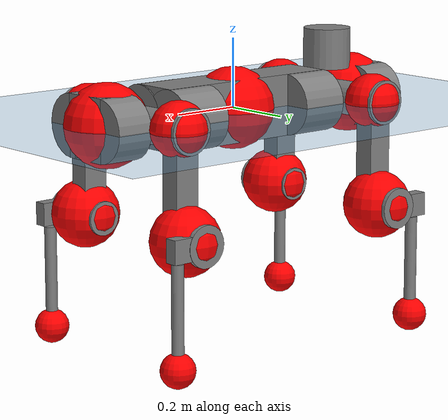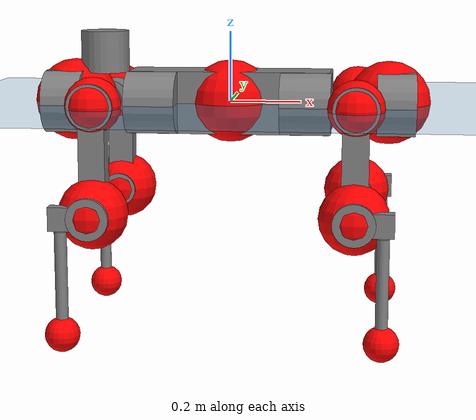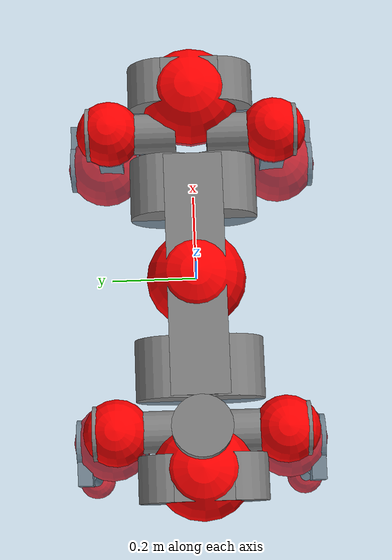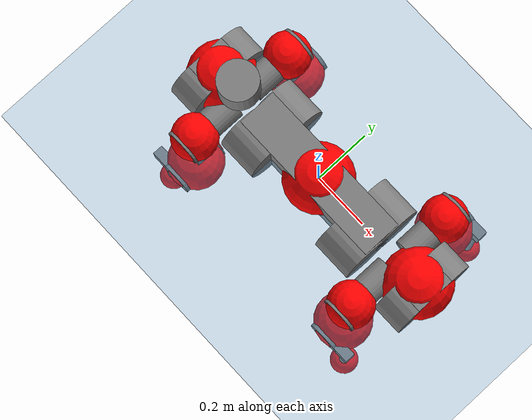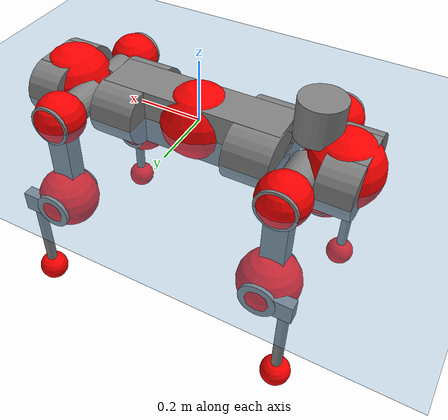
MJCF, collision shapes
<mujoco model="anymal_c">
  <compiler angle="radian" assetdir="assets" balanceinertia="true" inertiafromgeom="false"/>

  <option timestep="0.005" density="1.2" viscosity="2e-05"/>

  <size nkey="1"/>

  <visual>
    <quality shadowsize="8192"/>
    <map shadowclip="0.5"/>
  </visual>

  <default>
    <default class="/">
      <material specular="0" shininess="0.25"/>
      <geom contype="0" conaffinity="0" group="1" solref="-1000 -80"/>
      <site size="0.01 0.005 0.005" group="5"/>
      <general forcelimited="true" forcerange="-80 80" biastype="affine" gainprm="80" biasprm="0 -80 -2"/>
      <default class="anymal_c">
        <joint armature="0.01" damping="0.01" frictionloss="0.1"/>
        <default class="visual">
          <geom type="mesh" group="2"/>
          <default class="visual_zflip"/>
        </default>
        <default class="collision">
          <geom type="cylinder" group="3"/>
          <default class="foot">
            <geom size="0.03 0 0" type="sphere" condim="6" priority="1" friction="0.8 0.02 0.01" solimp="0.015 1 0.03"/>
          </default>
        </default>
      </default>
      <default class="reward_collision_sphere">
        <geom group="5" rgba="1 0 0 1"/>
      </default>
    </default>
  </default>

  <asset>
    <texture type="skybox" colorspace="auto" name="//unnamed_texture_0" builtin="gradient" rgb1="0.95 0.95 0.95" rgb2="0.95 0.95 0.95" width="100" height="600"/>
    <texture type="2d" colorspace="auto" name="texplane" builtin="checker" rgb1="0.345 0.575 0.748" rgb2="0.345 0.575 0.748" markrgb="1 1 1" width="512" height="512"/>
    <texture type="2d" colorspace="linear" name="base" file="base.png"/>
    <texture type="2d" colorspace="linear" name="top_shell" file="top_shell.png"/>
    <texture type="2d" colorspace="linear" name="bottom_shell" file="bottom_shell.png"/>
    <texture type="2d" colorspace="linear" name="remote" file="remote.png"/>
    <texture type="2d" colorspace="linear" name="hatch" file="hatch.png"/>
    <texture type="2d" colorspace="linear" name="handle" file="handle.png"/>
    <texture type="2d" colorspace="linear" name="face" file="face.png"/>
    <texture type="2d" colorspace="linear" name="battery" file="battery.png"/>
    <texture type="2d" colorspace="linear" name="lidar_cage" file="lidar_cage.png"/>
    <texture type="2d" colorspace="linear" name="depth_camera" file="depth_camera.png"/>
    <texture type="2d" colorspace="linear" name="wide_angle_camera" file="wide_angle_camera.png"/>
    <texture type="2d" colorspace="linear" name="lidar" file="lidar.png"/>
    <texture type="2d" colorspace="linear" name="drive" file="drive.png"/>
    <texture type="2d" colorspace="linear" name="hip_l" file="hip_l.png"/>
    <texture type="2d" colorspace="linear" name="shank_l" file="shank_l.png"/>
    <texture type="2d" colorspace="linear" name="foot" file="foot.png"/>
    <texture type="2d" colorspace="linear" name="thigh" file="thigh.png"/>
    <texture type="2d" colorspace="linear" name="shank_r" file="shank_r.png"/>
    <texture type="2d" colorspace="linear" name="hip_r" file="hip_r.png"/>
    <material name="MatPlane" class="/" texture="texplane" texuniform="true" texrepeat="2 2" specular="0.9" shininess="0.5"/>
    <material name="black_plastic" class="/" rgba="0.007 0.007 0.007 1"/>
    <material name="green" class="/" rgba="0.052 0.178 0.033 1"/>
    <material name="red" class="/" rgba="0.178 0.006 0.005 1"/>
    <material name="yellow" class="/" rgba="0.178 0.119 0.006 1"/>
    <material name="lwl" class="/" rgba="0.8 0.8 0.8 1"/>
    <material name="base" class="/" texture="base"/>
    <material name="top_shell" class="/" texture="top_shell"/>
    <material name="bottom_shell" class="/" texture="bottom_shell"/>
    <material name="hip_l" class="/" texture="hip_l"/>
    <material name="thigh" class="/" texture="thigh"/>
    <material name="shank_l" class="/" texture="shank_l"/>
    <material name="foot" class="/" texture="foot"/>
    <material name="hip_r" class="/" texture="hip_r"/>
    <material name="shank" class="/" texture="shank_r"/>
    <material name="hatch" class="/" texture="hatch"/>
    <material name="remote" class="/" texture="remote"/>
    <material name="handle" class="/" texture="handle"/>
    <material name="face" class="/" texture="face"/>
    <material name="depth_camera" class="/" texture="depth_camera"/>
    <material name="wide_angle_camera" class="/" texture="wide_angle_camera"/>
    <material name="battery" class="/" texture="battery"/>
    <material name="lidar_cage" class="/" texture="lidar_cage"/>
    <material name="lidar" class="/" texture="lidar"/>
    <material name="drive" class="/" texture="drive"/>
    <mesh name="base_0" class="/" file="base_0.obj"/>
    <mesh name="base_1" class="/" file="base_1.obj"/>
    <mesh name="base_2" class="/" file="base_2.obj"/>
    <mesh name="base_3" class="/" file="base_3.obj"/>
    <mesh name="base_4" class="/" file="base_4.obj"/>
    <mesh name="base_5" class="/" file="base_5.obj"/>
    <mesh name="top_shell" class="/" file="top_shell.obj"/>
    <mesh name="bottom_shell" class="/" file="bottom_shell.obj"/>
    <mesh name="remote" class="/" file="remote.obj"/>
    <mesh name="handle" class="/" file="handle.obj"/>
    <mesh name="face" class="/" file="face.obj"/>
    <mesh name="wide_angle_camera" class="/" file="wide_angle_camera.obj"/>
    <mesh name="depth_camera" class="/" file="depth_camera.obj"/>
    <mesh name="battery" class="/" file="battery.obj"/>
    <mesh name="lidar_cage" class="/" file="lidar_cage.obj"/>
    <mesh name="lidar" class="/" file="lidar.obj"/>
    <mesh name="drive" class="/" file="drive.obj"/>
    <mesh name="hip_l" class="/" file="hip_l.obj"/>
    <mesh name="thigh" class="/" file="thigh.obj"/>
    <mesh name="shank_l" class="/" file="shank_l.obj"/>
    <mesh name="foot" class="/" file="foot.obj"/>
    <mesh name="hip_r" class="/" file="hip_r.obj"/>
    <mesh name="hatch" class="/" file="hatch.obj"/>
    <mesh name="shank_r" class="/" file="shank_r.obj"/>
  </asset>

  <worldbody>
    <geom name="floor" class="/" size="100 100 0.125" type="plane" group="0" material="MatPlane"/>
    <light name="toplight_shadow" class="/" pos="0 0 5" dir="0.0990148 0.0990148 -0.990148" type="directional" ambient="0.04 0.04 0.04" diffuse="0.55 0.55 0.55" specular="0.12 0.12 0.12"/>
    <light name="toplight_fill" class="/" pos="0 0 5" dir="0.0990148 0.0990148 -0.990148" type="directional" castshadow="false" ambient="0.04 0.04 0.04" diffuse="0.3 0.3 0.3" specular="0.08 0.08 0.08"/>
    <body name="trunk" childclass="anymal_c" pos="0.000268798 0.000201826 0.000721936" quat="1 -3.26568e-05 -6.87882e-05 4.26509e-05">
      <inertial pos="0.00297576 -0.00201704 0.0513223" quat="0.497445 0.501462 0.501683 0.499399" mass="17.8889" diaginertia="0.623004 0.359244 0.275769"/>
      <joint name="//unnamed_joint_0" type="free" armature="0" damping="0" frictionloss="0"/>
      <geom name="//unnamed_geom_1" class="visual" material="green" mesh="base_0"/>
      <geom name="//unnamed_geom_2" class="visual" material="yellow" mesh="base_1"/>
      <geom name="//unnamed_geom_3" class="visual" material="red" mesh="base_2"/>
      <geom name="//unnamed_geom_4" class="visual" material="black_plastic" mesh="base_3"/>
      <geom name="//unnamed_geom_5" class="visual" material="lwl" mesh="base_4"/>
      <geom name="//unnamed_geom_6" class="visual" material="base" mesh="base_5"/>
      <geom name="trunk_1" class="collision" size="0.286153 0.0690713 0.088806" type="box"/>
      <geom name="trunk_2" class="collision" size="0.088806 0.0715381" pos="0.218604 0.0631566 0" quat="0.707107 0 0.707107 0"/>
      <geom name="trunk_3" class="collision" size="0.088806 0.0715381" pos="-0.218604 0.0631566 0" quat="0.707107 0 0.707107 0"/>
      <geom name="trunk_4" class="collision" size="0.088806 0.0715381" pos="0.218604 -0.0631566 0" quat="0.707107 0 0.707107 0"/>
      <geom name="trunk_5" class="collision" size="0.088806 0.0715381" pos="-0.218604 -0.0631566 0" quat="0.707107 0 0.707107 0"/>
      <geom name="//unnamed_geom_12" class="visual" material="top_shell" mesh="top_shell"/>
      <geom name="//unnamed_geom_13" class="visual" material="bottom_shell" mesh="bottom_shell"/>
      <geom name="//unnamed_geom_14" class="visual" material="remote" mesh="remote"/>
      <geom name="//unnamed_geom_15" class="visual" material="handle" mesh="handle"/>
      <geom name="//unnamed_geom_16" class="visual" pos="0.416605 0 0" quat="1 0 0 0" material="face" mesh="face"/>
      <geom name="trunk_6" class="collision" size="0.0542703 0.0690713 0.088806" pos="0.471884 0 0" type="box"/>
      <geom name="//unnamed_geom_18" class="collision" size="0.088806 0.0542703" pos="0.471884 0.0631566 0" quat="0.707107 0 0.707107 0"/>
      <geom name="//unnamed_geom_19" class="collision" size="0.088806 0.0542703" pos="0.471884 -0.0631566 0" quat="0.707107 0 0.707107 0"/>
      <geom name="//unnamed_geom_20" class="visual" pos="0.463996 0 -0.0311076" quat="0.965926 0 0.258819 0" material="depth_camera" mesh="depth_camera"/>
      <geom name="//unnamed_geom_21" class="visual" pos="0.515605 0 0.0157617" material="wide_angle_camera" mesh="wide_angle_camera"/>
      <geom name="//unnamed_geom_22" class="visual_zflip" pos="-0.416605 0 0" quat="0 0 0 1" material="face" mesh="face"/>
      <geom name="trunk_7" class="collision" size="0.0542703 0.0690713 0.088806" pos="-0.471884 0 0" quat="0 0 0 1" type="box"/>
      <geom name="//unnamed_geom_24" class="collision" size="0.088806 0.0542703" pos="-0.471884 -0.0631566 0" quat="0 -0.707107 0 0.707107"/>
      <geom name="//unnamed_geom_25" class="collision" size="0.088806 0.0542703" pos="-0.471884 0.0631566 0" quat="0 -0.707107 0 0.707107"/>
      <geom name="//unnamed_geom_26" class="visual" pos="-0.463996 0 -0.0311076" quat="0 -0.258819 0 0.965926" material="depth_camera" mesh="depth_camera"/>
      <geom name="//unnamed_geom_27" class="visual_zflip" pos="-0.515605 0 0.0157617" quat="0 0 0 1" material="wide_angle_camera" mesh="wide_angle_camera"/>
      <geom name="//unnamed_geom_28" class="visual" material="battery" mesh="battery"/>
      <geom name="//unnamed_geom_29" class="visual" pos="0 0.0676375 0.030223" quat="0.683013 -0.183013 0.183013 0.683013" material="depth_camera" mesh="depth_camera"/>
      <geom name="//unnamed_geom_30" class="visual" pos="0 -0.0676375 0.030223" quat="0.683013 0.183013 0.183013 -0.683013" material="depth_camera" mesh="depth_camera"/>
      <geom name="//unnamed_geom_31" class="visual" pos="-0.365848 0 0.077387" quat="1 0 0 0" material="lidar_cage" mesh="lidar_cage"/>
      <geom name="trunk_8" class="collision" size="0.0690713 0.059204" pos="-0.365848 0 0.14056"/>
      <geom name="//unnamed_geom_33" class="visual" pos="-0.365848 -4.04034e-05 0.14972" quat="0.707107 0 0 -0.707107" material="lidar" mesh="lidar"/>
      <geom name="//unnamed_geom_34" class="visual" pos="0.301423 0.0938862 -2.59868e-09" quat="0.258819 0.965926 0 0" material="drive" mesh="drive"/>
      <geom name="//unnamed_geom_35" class="visual" pos="0.301423 -0.0938862 2.59868e-09" quat="0.258819 -0.965926 0 0" material="drive" mesh="drive"/>
      <geom name="//unnamed_geom_36" class="visual" pos="-0.301423 0.0938862 2.59868e-09" quat="0 0 0.965926 -0.258819" material="drive" mesh="drive"/>
      <geom name="//unnamed_geom_37" class="visual" pos="-0.301423 -0.0938862 -2.59868e-09" quat="0 0 -0.965926 -0.258819" material="drive" mesh="drive"/>
      <geom name="//unnamed_geom_38" class="visual" pos="0.116589 0 0.0768606" quat="1 0 0 0" material="hatch" mesh="hatch"/>
      <geom name="//unnamed_geom_39" class="reward_collision_sphere" size="0.118408"/>
      <geom name="//unnamed_geom_40" class="reward_collision_sphere" size="0.118408" pos="0.452285 0 0"/>
      <geom name="//unnamed_geom_41" class="reward_collision_sphere" size="0.118408" pos="-0.452285 0 0"/>
      <site name="imu" pos="0.247537 0.0080461 0.0491766" size="0.00986733"/>
      <camera name="track" pos="0 -1.80447 0" quat="0.707107 0.707107 0 0" mode="trackcom"/>
      <camera name="ego_camera" pos="0.452285 0 -0.0421154" quat="-0.5 -0.5 0.5 0.5"/>
      <body name="LF_HIP" pos="0.302478 0.094222 -0.000423845" quat="0.25872 0.965952 -0.000102738 -6.4652e-05">
        <inertial pos="0.0570756 -0.014158 -0.00839817" quat="-0.126975 0.713827 -0.125377 0.677206" mass="2.66164" diaginertia="0.00599361 0.00297746 0.00426178"/>
        <joint name="LF_HAA" pos="0 0 0" axis="0.999995 0.000111905 -0.00315704" range="-0.701779 0.485997" armature="0.00979342" damping="0.0102939" frictionloss="0.0989102"/>
        <geom name="//unnamed_geom_42" class="visual" pos="0 -0.000152869 2.51086e-05" quat="0.258819 -0.965926 0 0" material="hip_l" mesh="hip_l"/>
        <geom name="//unnamed_geom_43" class="visual" pos="0.0602042 -0.0716496 -0.0424812" quat="0.183013 -0.683013 0.683013 0.183013" material="drive" mesh="drive"/>
        <geom name="//unnamed_geom_44" class="collision" size="0.0493367 0.0690713" pos="0.0602042 -0.0107906 -0.00727017" quat="-0.353553 -0.612372 0.612372 -0.353553"/>
        <body name="LF_THIGH" pos="0.0613657 -0.0668808 -0.0454904" quat="0.18227 -0.683023 0.68303 0.183652">
          <inertial pos="0.0313648 0.0021142 -0.25899" quat="0.993456 -0.000822091 -0.0791489 0.0823377" mass="2.91882" diaginertia="0.0305494 0.0182799 0.00541133"/>
          <joint name="LF_HFE" pos="0 0 0" axis="0.999999 0.000619142 0.00118781" range="-3.14356 3.1068" armature="0.0108482" damping="0.0116684" frictionloss="0.102341"/>
          <geom name="//unnamed_geom_45" class="visual" pos="0.00204613 3.22422e-06 0" quat="0.707107 0 0 -0.707107" material="thigh" mesh="thigh"/>
          <geom name="//unnamed_geom_46" class="collision" size="0.0641376 0.0394693" pos="0.0402031 0 0" quat="0.5 0.5 -0.5 -0.5"/>
          <geom name="//unnamed_geom_47" class="collision" size="0.0370025 0.029602 0.139439" pos="0.0301523 0 -0.148787" quat="0.707107 0 0 -0.707107" type="box"/>
          <geom name="//unnamed_geom_48" class="visual" pos="0.100809 0 -0.300072" quat="1 0 0 0" material="drive" mesh="drive"/>
          <geom name="//unnamed_geom_49" class="collision" size="0.0493367 0.0690713" pos="0.0304539 0 -0.300072" quat="0.707107 0 0.707107 0"/>
          <geom name="//unnamed_geom_50" class="reward_collision_sphere" size="0.0789386" pos="0.0251269 0 0"/>
          <body name="LF_SHANK" pos="0.101224 -0.000105753 -0.300333" quat="1 -1.18889e-05 0.00029784 0.000123432">
            <inertial pos="0.00422161 -0.0547824 -0.0856586" quat="0.992393 -0.120446 -0.00123246 -0.025428" mass="0.56201" diaginertia="0.0104636 0.00565732 0.00144632"/>
            <joint name="LF_KFE" pos="0 0 0" axis="1 -0.000177912 -0.000619157" range="-3.09997 3.15014" armature="0.0102788" damping="1.84662e-05" frictionloss="0.0946892"/>
            <geom name="//unnamed_geom_51" class="visual" pos="0.000667198 0.00355753 0" quat="0.707107 0 0 -0.707107" material="shank_l" mesh="shank_l"/>
            <geom name="LF_kfe_act" class="collision" size="0.059204 0.0197347" pos="0.0201016 0 0" quat="0.5 0.5 -0.5 -0.5"/>
            <geom name="//unnamed_geom_53" class="collision" size="0.0567362 0.0333022 0.0187479" pos="0.0201016 -0.0518777 0" quat="0.5 0.5 -0.5 -0.5" type="box"/>
            <geom name="//unnamed_geom_54" class="visual" pos="0.0131161 -0.0782053 -0.355843" quat="0.382683 0 0 -0.92388" material="foot" mesh="foot"/>
            <geom name="LF_calf" class="collision" size="0.0172678 0.139378" pos="0.0131163 -0.0793517 -0.177922" quat="0.707107 0 0 -0.707107"/>
            <geom name="LF_foot" class="foot" size="0.0303766" pos="0.0131163 -0.0793517 -0.332153" quat="0.707107 0 0 -0.707107"/>
            <geom name="//unnamed_geom_57" class="reward_collision_sphere" size="0.0986733" pos="-0.0502539 0 0"/>
            <geom name="//unnamed_geom_58" class="reward_collision_sphere" size="0.0493367" pos="0.0131163 -0.0793517 -0.332153"/>
            <site name="LF_foot" class="foot" pos="0.0131163 -0.0793517 -0.332153" quat="0.707107 0 0 -0.707107" size="0.00986733"/>
          </body>
        </body>
      </body>
      <body name="RF_HIP" pos="0.300094 -0.0931274 -0.00218004" quat="0.258633 -0.965976 0.000368016 6.75547e-05">
        <inertial pos="0.0565616 0.0131156 -0.00792374" quat="0.138976 0.682482 0.124956 0.706605" mass="2.69326" diaginertia="0.00598353 0.00294237 0.00419412"/>
        <joint name="RF_HAA" pos="0 0 0" axis="0.999999 -0.00166109 0.000410245" range="-0.485181 0.74493" armature="0.0104075" damping="0.0133819" frictionloss="0.0958521"/>
        <geom name="//unnamed_geom_59" class="visual" pos="0 0.000152868 2.51085e-05" quat="0.258819 0.965926 0 0" material="hip_r" mesh="hip_r"/>
        <geom name="//unnamed_geom_60" class="visual" pos="0.0602042 0.0716496 -0.0424812" quat="0.183013 0.683013 0.683013 -0.183013" material="drive" mesh="drive"/>
        <geom name="//unnamed_geom_61" class="collision" size="0.0493367 0.0690713" pos="0.0602042 0.0107906 -0.00727017" quat="-0.353553 0.612372 0.612372 0.353553"/>
        <body name="RF_THIGH" pos="0.0614624 0.0671822 -0.0462378" quat="0.183021 0.683019 0.682993 -0.183054">
          <inertial pos="0.0301976 0.000217939 -0.256792" quat="0.992839 -0.00798117 -0.0776496 0.0904329" mass="2.93093" diaginertia="0.0311393 0.0179044 0.00542304"/>
          <joint name="RF_HFE" pos="0 0 0" axis="0.999978 0.00601816 0.00264816" stiffness="0.0128102" range="-3.13554 3.12095" armature="0.00927577" damping="0.0153855" frictionloss="0.100936"/>
          <geom name="//unnamed_geom_62" class="visual" pos="0.00204613 3.22422e-06 0" quat="0.707107 0 0 -0.707107" material="thigh" mesh="thigh"/>
          <geom name="//unnamed_geom_63" class="collision" size="0.0641376 0.0394693" pos="0.0402031 0 0" quat="0.5 0.5 0.5 0.5"/>
          <geom name="//unnamed_geom_64" class="collision" size="0.0370025 0.029602 0.139439" pos="0.0301523 0 -0.148787" quat="0.707107 0 0 0.707107" type="box"/>
          <geom name="//unnamed_geom_65" class="visual" pos="0.100809 0 -0.300072" quat="1 0 0 0" material="drive" mesh="drive"/>
          <geom name="//unnamed_geom_66" class="collision" size="0.0493367 0.0690713" pos="0.0304539 0 -0.300072" quat="0.707107 0 0.707107 0"/>
          <geom name="//unnamed_geom_67" class="reward_collision_sphere" size="0.0789386" pos="0.0251269 0 0"/>
          <body name="RF_SHANK" pos="0.101724 -0.000844776 -0.298294" quat="1 -3.6836e-06 -2.28251e-06 4.78096e-06">
            <inertial pos="0.0062194 0.0550725 -0.0848676" quat="0.992406 0.119584 -0.00117552 0.0287984" mass="0.578941" diaginertia="0.0108124 0.00566138 0.00149387"/>
            <joint name="RF_KFE" pos="0 0 0" axis="0.999996 0.00143473 0.00237299" range="-3.15629 3.12778" armature="0.00967077" damping="0" frictionloss="0.103306"/>
            <geom name="//unnamed_geom_68" class="visual" pos="0.000667194 -0.00355753 0" quat="0.707107 0 0 0.707107" material="shank" mesh="shank_r"/>
            <geom name="RF_kfe_act" class="collision" size="0.059204 0.0197347" pos="0.0201016 0 0" quat="0.5 0.5 0.5 0.5"/>
            <geom name="//unnamed_geom_70" class="collision" size="0.0567362 0.0333022 0.0187479" pos="0.0201016 0.0518777 0" quat="0.5 0.5 0.5 0.5" type="box"/>
            <geom name="//unnamed_geom_71" class="visual" pos="0.0131164 0.0782053 -0.355843" quat="0.382683 0 0 0.92388" material="foot" mesh="foot"/>
            <geom name="RF_calf" class="collision" size="0.0172678 0.139378" pos="0.0131163 0.0793517 -0.177922" quat="0.707107 0 0 0.707107"/>
            <geom name="RF_foot" class="foot" size="0.0266875" pos="0.0131163 0.0793517 -0.332153" quat="0.707107 0 0 0.707107"/>
            <geom name="//unnamed_geom_74" class="reward_collision_sphere" size="0.0986733" pos="-0.0502539 0 0"/>
            <geom name="//unnamed_geom_75" class="reward_collision_sphere" size="0.0493367" pos="0.0131163 0.0793517 -0.332153"/>
            <site name="RF_foot" class="foot" pos="0.0131163 0.0793517 -0.332153" quat="0.707107 0 0 0.707107" size="0.00986733"/>
          </body>
        </body>
      </body>
      <body name="LH_HIP" pos="-0.300921 0.0932384 0.000425574" quat="7.42531e-05 0.000107692 0.965975 -0.258636">
        <inertial pos="0.0571888 0.0138188 -0.00931161" quat="0.134887 0.678542 0.127681 0.710692" mass="2.63426" diaginertia="0.00607325 0.00301158 0.00427236"/>
        <joint name="LH_HAA" pos="0 0 0" axis="0.999983 0.00196141 -0.00555676" range="-0.476962 0.739592" armature="0.00992117" damping="0.0108957" frictionloss="0.100809"/>
        <geom name="//unnamed_geom_76" class="visual" pos="0 0.000152868 2.51085e-05" quat="-0.258819 -0.965926 0 0" material="hip_r" mesh="hip_r"/>
        <geom name="//unnamed_geom_77" class="visual" pos="0.0602042 0.0716496 -0.0424812" quat="0.183013 0.683013 0.683013 -0.183013" material="drive" mesh="drive"/>
        <geom name="//unnamed_geom_78" class="collision" size="0.0493367 0.0690713" pos="0.0602042 0.0107906 -0.00727017" quat="-0.353553 0.612372 0.612372 0.353553"/>
        <body name="LH_THIGH" pos="0.0596307 0.0668193 -0.0443733" quat="0.183766 0.682851 0.682797 -0.183666">
          <inertial pos="0.0308567 0.0020679 -0.259432" quat="0.992892 -0.00398132 -0.0809951 0.0871191" mass="2.88242" diaginertia="0.031335 0.0177257 0.00549997"/>
          <joint name="LH_HFE" pos="0 0 0" axis="0.999949 0.00976312 0.00241783" range="-3.15239 3.14145" armature="0.00972125" damping="0.0104944" frictionloss="0.102226"/>
          <geom name="//unnamed_geom_79" class="visual" pos="0.00204613 3.22422e-06 0" quat="0.707107 0 0 -0.707107" material="thigh" mesh="thigh"/>
          <geom name="//unnamed_geom_80" class="collision" size="0.0641376 0.0394693" pos="0.0402031 0 0" quat="0.5 0.5 -0.5 -0.5"/>
          <geom name="//unnamed_geom_81" class="collision" size="0.0370025 0.029602 0.139439" pos="0.0301523 0 -0.148787" quat="0.707107 0 0 -0.707107" type="box"/>
          <geom name="//unnamed_geom_82" class="visual" pos="0.100809 0 -0.300072" quat="1 0 0 0" material="drive" mesh="drive"/>
          <geom name="//unnamed_geom_83" class="collision" size="0.0493367 0.0690713" pos="0.0304539 0 -0.300072" quat="0.707107 0 0.707107 0"/>
          <geom name="//unnamed_geom_84" class="reward_collision_sphere" size="0.0789386" pos="0.0251269 0 0"/>
          <body name="LH_SHANK" pos="0.101704 -0.00173548 -0.30093" quat="1 -0.000439595 -0.000397302 9.06897e-05">
            <inertial pos="0.00559514 0.0558835 -0.0853992" quat="0.992885 0.116212 -0.00198246 0.0259021" mass="0.572856" diaginertia="0.0104618 0.00553499 0.00144616"/>
            <joint name="LH_KFE" pos="0 0 0" axis="1 0.000503175 -0.000152356" range="-3.10769 3.14467" armature="0.01087" damping="0.00926531" frictionloss="0.100383"/>
            <geom name="//unnamed_geom_85" class="visual" pos="0.000667194 -0.00355753 0" quat="-0.707107 0 0 -0.707107" material="shank" mesh="shank_r"/>
            <geom name="LH_kfe_act" class="collision" size="0.059204 0.0197347" pos="0.0201016 0 0" quat="0.5 0.5 -0.5 -0.5"/>
            <geom name="//unnamed_geom_87" class="collision" size="0.0567362 0.0333022 0.0187479" pos="0.0201016 0.0518777 0" quat="0.5 0.5 -0.5 -0.5" type="box"/>
            <geom name="//unnamed_geom_88" class="visual" pos="0.0131164 0.0782053 -0.355843" quat="-0.382683 0 0 -0.92388" material="foot" mesh="foot"/>
            <geom name="LH_calf" class="collision" size="0.0172678 0.139378" pos="0.0131163 0.0793517 -0.177922" quat="0.707107 0 0 -0.707107"/>
            <geom name="LH_foot" class="foot" size="0.030851" pos="0.0131163 0.0793517 -0.332153" quat="0.707107 0 0 -0.707107"/>
            <geom name="//unnamed_geom_91" class="reward_collision_sphere" size="0.0986733" pos="-0.0502539 0 0"/>
            <geom name="//unnamed_geom_92" class="reward_collision_sphere" size="0.0493367" pos="0.0131163 0.0793517 -0.332153"/>
            <site name="LH_foot" class="foot" pos="0.0131163 0.0793517 -0.332153" quat="0.707107 0 0 -0.707107" size="0.00986733"/>
          </body>
        </body>
      </body>
      <body name="RH_HIP" pos="-0.303296 -0.0945689 -0.000200552" quat="0.000750843 -0.000912328 -0.965976 -0.258627">
        <inertial pos="0.0570321 -0.0132282 -0.00937039" quat="-0.128114 0.709995 -0.13485 0.679198" mass="2.70553" diaginertia="0.00607585 0.00294704 0.00442223"/>
        <joint name="RH_HAA" pos="0 0 0" axis="0.999995 -0.000229407 0.00322228" range="-0.722494 0.491924" armature="0.0105859" damping="0.0092604" frictionloss="0.0962652"/>
        <geom name="//unnamed_geom_93" class="visual" pos="0 -0.000152869 2.51086e-05" quat="-0.258819 0.965926 0 0" material="hip_l" mesh="hip_l"/>
        <geom name="//unnamed_geom_94" class="visual" pos="0.0602042 -0.0716496 -0.0424812" quat="-0.183013 0.683013 -0.683013 -0.183013" material="drive" mesh="drive"/>
        <geom name="//unnamed_geom_95" class="collision" size="0.0493367 0.0690713" pos="0.0602042 -0.0107906 -0.00727017" quat="0.353553 0.612372 -0.612372 0.353553"/>
        <body name="RH_THIGH" pos="0.0602505 -0.0653074 -0.044281" quat="-0.183315 0.683047 -0.68302 -0.182554">
          <inertial pos="0.0312685 -0.000411051 -0.25868" quat="0.993369 -0.00607147 -0.0799515 0.0823938" mass="2.91832" diaginertia="0.0307453 0.0179623 0.00541974"/>
          <joint name="RH_HFE" pos="0 0 0" axis="0.999998 -0.00125689 0.00132933" range="-3.1353 3.18533" armature="0.0089333" damping="0.0121264" frictionloss="0.0973175"/>
          <geom name="//unnamed_geom_96" class="visual" pos="0.00204613 3.22422e-06 0" quat="0.707107 0 0 -0.707107" material="thigh" mesh="thigh"/>
          <geom name="//unnamed_geom_97" class="collision" size="0.0641376 0.0394693" pos="0.0402031 0 0" quat="0.5 0.5 0.5 0.5"/>
          <geom name="//unnamed_geom_98" class="collision" size="0.0370025 0.029602 0.139439" pos="0.0301523 0 -0.148787" quat="0.707107 0 0 0.707107" type="box"/>
          <geom name="//unnamed_geom_99" class="visual" pos="0.100809 0 -0.300072" quat="1 0 0 0" material="drive" mesh="drive"/>
          <geom name="//unnamed_geom_100" class="collision" size="0.0493367 0.0690713" pos="0.0304539 0 -0.300072" quat="0.707107 0 0.707107 0"/>
          <geom name="//unnamed_geom_101" class="reward_collision_sphere" size="0.0789386" pos="0.0251269 0 0"/>
          <body name="RH_SHANK" pos="0.0999702 0.000765659 -0.300408" quat="1 -8.02798e-05 2.45372e-05 7.20758e-05">
            <inertial pos="0.00630205 -0.0548863 -0.0851587" quat="0.992873 -0.116531 -0.000995628 -0.0249551" mass="0.56279" diaginertia="0.0103289 0.00544919 0.00143682"/>
            <joint name="RH_KFE" pos="0 0 0" axis="0.999993 -0.00328771 0.00170293" range="-3.09577 3.11717" armature="0.00950269" damping="0.00825977" frictionloss="0.0949387"/>
            <geom name="//unnamed_geom_102" class="visual" pos="0.000667198 0.00355753 0" quat="0.707107 0 0 -0.707107" material="shank_l" mesh="shank_l"/>
            <geom name="RH_kfe_act" class="collision" size="0.059204 0.0197347" pos="0.0201016 0 0" quat="0.5 0.5 0.5 0.5"/>
            <geom name="//unnamed_geom_104" class="collision" size="0.0567362 0.0333022 0.0187479" pos="0.0201016 -0.0518777 0" quat="0.5 0.5 0.5 0.5" type="box"/>
            <geom name="//unnamed_geom_105" class="visual" pos="0.0131161 -0.0782053 -0.355843" quat="0.382683 0 0 -0.92388" material="foot" mesh="foot"/>
            <geom name="RH_calf" class="collision" size="0.0172678 0.139378" pos="0.0131163 -0.0793517 -0.177922" quat="0.707107 0 0 0.707107"/>
            <geom name="RH_foot" class="foot" size="0.0293131" pos="0.0131163 -0.0793517 -0.332153" quat="0.707107 0 0 0.707107"/>
            <geom name="//unnamed_geom_108" class="reward_collision_sphere" size="0.0986733" pos="-0.0502539 0 0"/>
            <geom name="//unnamed_geom_109" class="reward_collision_sphere" size="0.0493367" pos="0.0131163 -0.0793517 -0.332153"/>
            <site name="RH_foot" class="foot" pos="0.0131163 -0.0793517 -0.332153" quat="0.707107 0 0 0.707107" size="0.00986733"/>
          </body>
        </body>
      </body>
    </body>
  </worldbody>

  <contact>
    <pair class="/" geom1="floor" geom2="LF_foot" name="//unnamed_contact_0"/>
    <pair class="/" geom1="floor" geom2="RF_foot" name="//unnamed_contact_1"/>
    <pair class="/" geom1="floor" geom2="LH_foot" name="//unnamed_contact_2"/>
    <pair class="/" geom1="floor" geom2="RH_foot" name="//unnamed_contact_3"/>
  </contact>

  <actuator>
    <general name="LF_HAA" class="/" joint="LF_HAA" forcerange="-77.1614 77.1614" gainprm="80.0728" biasprm="0 -80.0728 -1.87564"/>
    <general name="LF_HFE" class="/" joint="LF_HFE" forcerange="-79.212 79.212" gainprm="80.0728" biasprm="0 -80.0728 -1.87564"/>
    <general name="LF_KFE" class="/" joint="LF_KFE" forcerange="-80.6239 80.6239" gainprm="80.0728" biasprm="0 -80.0728 -1.87564"/>
    <general name="RF_HAA" class="/" joint="RF_HAA" forcerange="-82.4811 82.4811" gainprm="80.0728" biasprm="0 -80.0728 -1.87564"/>
    <general name="RF_HFE" class="/" joint="RF_HFE" forcerange="-79.6085 79.6085" gainprm="80.0728" biasprm="0 -80.0728 -1.87564"/>
    <general name="RF_KFE" class="/" joint="RF_KFE" forcerange="-78.5712 78.5712" gainprm="80.0728" biasprm="0 -80.0728 -1.87564"/>
    <general name="LH_HAA" class="/" joint="LH_HAA" forcerange="-80.8449 80.8449" gainprm="80.0728" biasprm="0 -80.0728 -1.87564"/>
    <general name="LH_HFE" class="/" joint="LH_HFE" forcerange="-79.0913 79.0913" gainprm="80.0728" biasprm="0 -80.0728 -1.87564"/>
    <general name="LH_KFE" class="/" joint="LH_KFE" forcerange="-76.9025 76.9025" gainprm="80.0728" biasprm="0 -80.0728 -1.87564"/>
    <general name="RH_HAA" class="/" joint="RH_HAA" forcerange="-82.2848 82.2848" gainprm="80.0728" biasprm="0 -80.0728 -1.87564"/>
    <general name="RH_HFE" class="/" joint="RH_HFE" forcerange="-76.3728 76.3728" gainprm="80.0728" biasprm="0 -80.0728 -1.87564"/>
    <general name="RH_KFE" class="/" joint="RH_KFE" forcerange="-83.143 83.143" gainprm="80.0728" biasprm="0 -80.0728 -1.87564"/>
  </actuator>

  <sensor>
    <gyro site="imu" name="imu_angular_velocity"/>
    <velocimeter site="imu" name="imu_linear_velocity"/>
    <framelinvel objtype="site" objname="LF_foot" name="LF_foot_global_linear_velocity"/>
    <framelinvel objtype="site" objname="RF_foot" name="RF_foot_global_linear_velocity"/>
    <framelinvel objtype="site" objname="LH_foot" name="LH_foot_global_linear_velocity"/>
    <framelinvel objtype="site" objname="RH_foot" name="RH_foot_global_linear_velocity"/>
  </sensor>

  <keyframe>
    <key name="home" qpos="0 0 0.55 1 0 0 0 0 0.4 -0.8 0 -0.4 0.8 0 -0.4 0.8 0 0.4 -0.8"/>
  </keyframe>
</mujoco>
